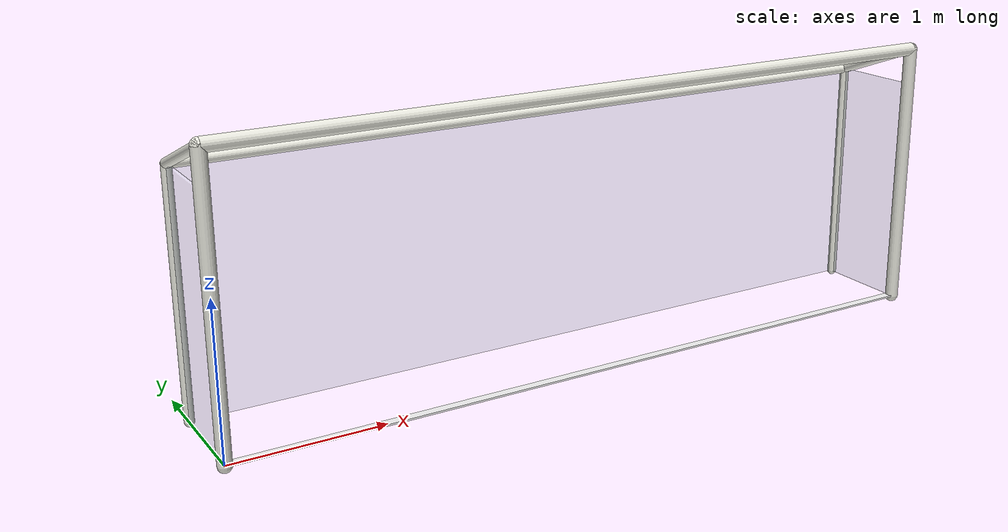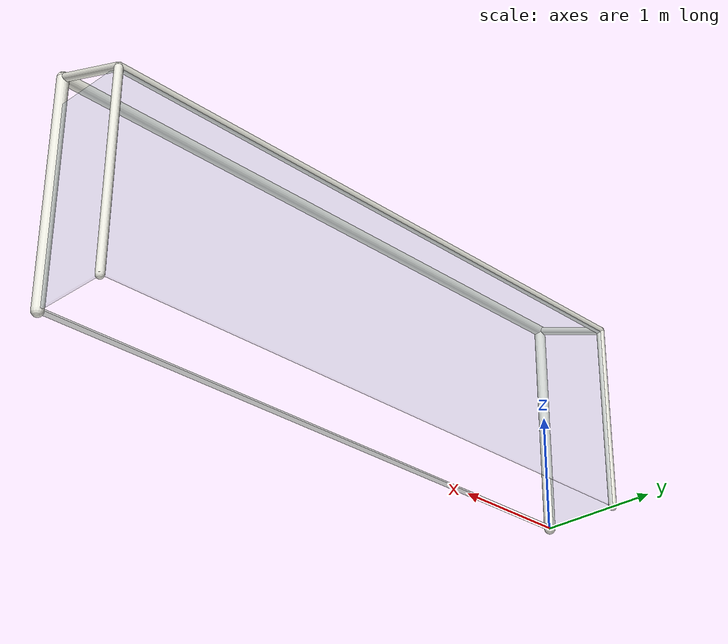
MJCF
<mujoco model="arena_football_goal">
  <asset>
    <material name="goal_white" rgba="0.92 0.92 0.88 1" />
    <material name="goal_net" rgba="0.72 0.78 0.84 0.30" />
    <material name="goal_line" rgba="0.96 0.96 0.96 1" />
  </asset>

  <worldbody>
    <body name="goal">
      <geom name="reference_line" type="box" pos="2.55 0.000 0.006" size="2.55 0.030 0.006" material="goal_line" contype="0" conaffinity="0" />

      <geom name="left_post" type="capsule" fromto="0.000 0.000 0.000 0.000 0.000 1.850" size="0.045" material="goal_white" />
      <geom name="right_post" type="capsule" fromto="5.100 0.000 0.000 5.100 0.000 1.850" size="0.045" material="goal_white" />
      <geom name="crossbar" type="capsule" fromto="0.000 0.000 1.850 5.100 0.000 1.850" size="0.045" material="goal_white" />

      <geom name="left_back_post" type="capsule" fromto="0.000 0.650 0.000 0.000 0.650 1.600" size="0.032" material="goal_white" />
      <geom name="right_back_post" type="capsule" fromto="5.100 0.650 0.000 5.100 0.650 1.600" size="0.032" material="goal_white" />
      <geom name="back_bar" type="capsule" fromto="0.000 0.650 1.600 5.100 0.650 1.600" size="0.032" material="goal_white" />
      <geom name="left_depth_bar" type="capsule" fromto="0.000 0.000 1.850 0.000 0.650 1.600" size="0.032" material="goal_white" />
      <geom name="right_depth_bar" type="capsule" fromto="5.100 0.000 1.850 5.100 0.650 1.600" size="0.032" material="goal_white" />

      <geom name="net_back" type="box" pos="2.550 0.660 0.800" size="2.550 0.010 0.800" material="goal_net" contype="0" conaffinity="0" />
      <geom name="net_left" type="box" pos="0.000 0.325 0.800" size="0.010 0.325 0.800" material="goal_net" contype="0" conaffinity="0" />
      <geom name="net_right" type="box" pos="5.100 0.325 0.800" size="0.010 0.325 0.800" material="goal_net" contype="0" conaffinity="0" />
    </body>
  </worldbody>
</mujoco>
